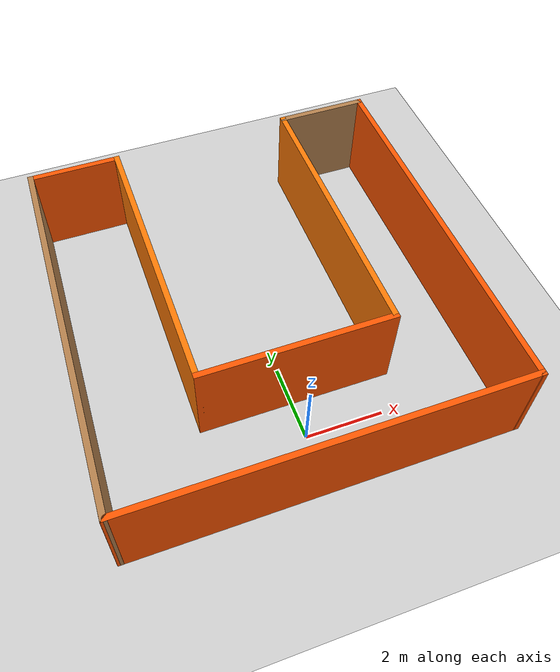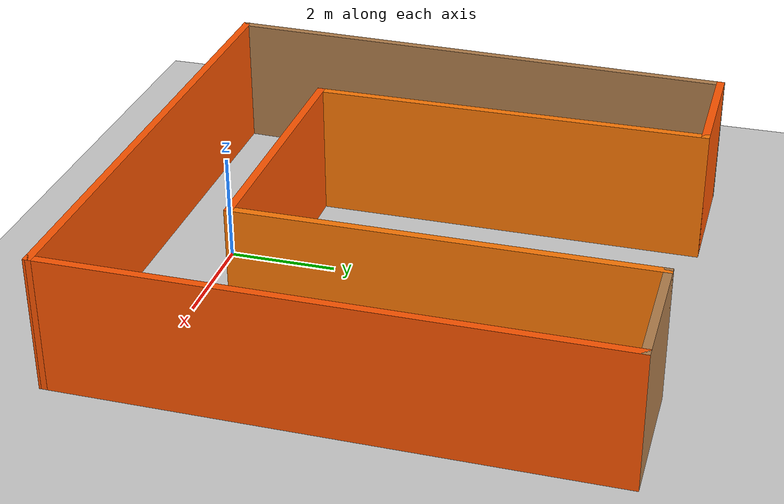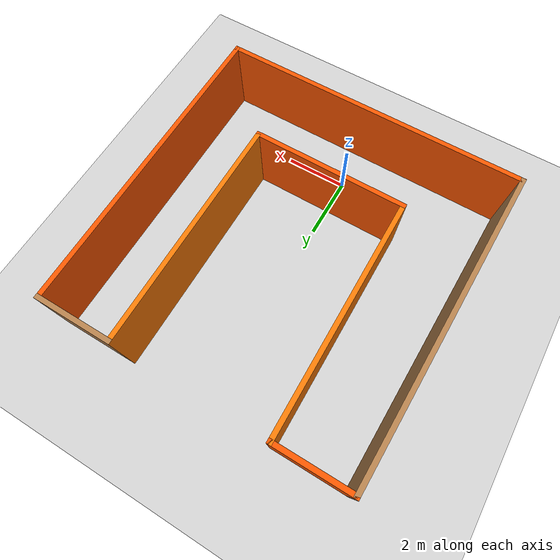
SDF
<sdf version="1.6">
 <world name="default">
  <light name="sun" type="directional">
   <pose>0 0 10 0 -0 0</pose>
   <diffuse>0.8 0.8 0.8 1</diffuse>
   <specular>0.2 0.2 0.2 1</specular>
   <attenuation>
    <range>1000</range>
    <constant>0.9</constant>
    <linear>0.01</linear>
    <quadratic>0.001</quadratic>
   </attenuation>
   <direction>-0.5 0.1 -0.9</direction>
  </light>
  <model name="ground_plane">
   <static>1</static>
   <link name="link">
    <collision name="collision">
     <geometry><plane><normal>0 0 1</normal><size>100 100</size></plane></geometry>
     <surface>
      <contact><collide_bitmask>65535</collide_bitmask></contact>
      <friction><ode><mu>100</mu><mu2>50</mu2></ode></friction>
     </surface>
    </collision>
    <visual name="visual">
     <cast_shadows>0</cast_shadows>
     <geometry><plane><normal>0 0 1</normal><size>100 100</size></plane></geometry>
     <material>
      <script><uri>file://media/materials/scripts/gazebo.material</uri><name>Gazebo/Grey</name></script>
     </material>
    </visual>
   </link>
  </model>
  <gravity>0 0 -9.8</gravity>
  <magnetic_field>6e-06 2.3e-05 -4.2e-05</magnetic_field>
  <atmosphere type="adiabatic"/>
  <physics name="default_physics" default="0" type="ode">
   <max_step_size>0.001</max_step_size>
   <real_time_factor>1</real_time_factor>
   <real_time_update_rate>1000</real_time_update_rate>
  </physics>
  <scene><ambient>0.4 0.4 0.4 1</ambient><background>0.7 0.7 0.7 1</background><shadows>1</shadows></scene>
  <spherical_coordinates>
   <surface_model>EARTH_WGS84</surface_model>
   <latitude_deg>0</latitude_deg>
   <longitude_deg>0</longitude_deg>
   <elevation>0</elevation>
   <heading_deg>0</heading_deg>
  </spherical_coordinates>
  <model name="arnab_wall">
   <pose>-0.040075 3.47376 0 0 -0 0</pose>
   <link name="Wall_10">
    <collision name="Wall_10_Collision">
     <geometry><box><size>7.5 0.15 2.5</size></box></geometry>
     <pose>0 0 1.25 0 -0 0</pose>
    </collision>
    <visual name="Wall_10_Visual">
     <pose>0 0 1.25 0 -0 0</pose>
     <geometry><box><size>7.5 0.15 2.5</size></box></geometry>
     <material>
      <script><uri>file://media/materials/scripts/gazebo.material</uri><name>Gazebo/Grey</name></script>
      <ambient>0.996078 0.47451 0.0196078 1</ambient>
     </material>
     <meta><layer>0</layer></meta>
    </visual>
    <pose>2.57611 1.24879 0 0 -0 1.5708</pose>
   </link>
   <link name="Wall_11">
    <collision name="Wall_11_Collision">
     <geometry><box><size>2.5 0.15 2.5</size></box></geometry>
     <pose>0 0 1.25 0 -0 0</pose>
    </collision>
    <visual name="Wall_11_Visual">
     <pose>0 0 1.25 0 -0 0</pose>
     <geometry><box><size>2.5 0.15 2.5</size></box></geometry>
     <material>
      <script><uri>file://media/materials/scripts/gazebo.material</uri><name>Gazebo/Wood</name></script>
      <ambient>1 1 1 1</ambient>
     </material>
     <meta><layer>0</layer></meta>
    </visual>
    <pose>3.75111 4.92379 0 0 -0 0</pose>
   </link>
   <link name="Wall_13">
    <collision name="Wall_13_Collision">
     <geometry><box><size>10 0.15 2.5</size></box></geometry>
     <pose>0 0 1.25 0 -0 0</pose>
    </collision>
    <visual name="Wall_13_Visual">
     <pose>0 0 1.25 0 -0 0</pose>
     <geometry><box><size>10 0.15 2.5</size></box></geometry>
     <material>
      <script><uri>file://media/materials/scripts/gazebo.material</uri><name>Gazebo/Grey</name></script>
      <ambient>1 0.333333 0 1</ambient>
     </material>
     <meta><layer>0</layer></meta>
    </visual>
    <pose>4.92611 -0.001213 0 0 0 -1.5708</pose>
   </link>
   <link name="Wall_14">
    <collision name="Wall_14_Collision">
     <geometry><box><size>10 0.15 2.5</size></box></geometry>
     <pose>0 0 1.25 0 -0 0</pose>
    </collision>
    <visual name="Wall_14_Visual">
     <pose>0 0 1.25 0 -0 0</pose>
     <geometry><box><size>10 0.15 2.5</size></box></geometry>
     <material>
      <script><uri>file://media/materials/scripts/gazebo.material</uri><name>Gazebo/Grey</name></script>
      <ambient>1 0.333333 0 1</ambient>
     </material>
     <meta><layer>0</layer></meta>
    </visual>
    <pose>0.001109 -4.92371 0 0 -0 3.14108</pose>
   </link>
   <link name="Wall_4">
    <collision name="Wall_4_Collision">
     <geometry><box><size>2.5 0.15 2.5</size></box></geometry>
     <pose>0 0 1.25 0 -0 0</pose>
    </collision>
    <visual name="Wall_4_Visual">
     <pose>0 0 1.25 0 -0 0</pose>
     <geometry><box><size>2.5 0.15 2.5</size></box></geometry>
     <material>
      <script><uri>file://media/materials/scripts/gazebo.material</uri><name>Gazebo/Grey</name></script>
      <ambient>1 0.333333 0 1</ambient>
     </material>
     <meta><layer>0</layer></meta>
    </visual>
    <pose>-3.44889 4.92379 0 0 -0 0</pose>
   </link>
   <link name="Wall_5">
    <collision name="Wall_5_Collision">
     <geometry><box><size>7.5 0.15 2.5</size></box></geometry>
     <pose>0 0 1.25 0 -0 0</pose>
    </collision>
    <visual name="Wall_5_Visual">
     <pose>0 0 1.25 0 -0 0</pose>
     <geometry><box><size>7.5 0.15 2.5</size></box></geometry>
     <material>
      <script><uri>file://media/materials/scripts/gazebo.material</uri><name>Gazebo/Grey</name></script>
      <ambient>0.996078 0.47451 0.0196078 1</ambient>
     </material>
     <meta><layer>0</layer></meta>
    </visual>
    <pose>-2.27389 1.24879 0 0 0 -1.5708</pose>
   </link>
   <link name="Wall_7">
    <collision name="Wall_7_Collision">
     <geometry><box><size>10 0.15 2.5</size></box></geometry>
     <pose>0 0 1.25 0 -0 0</pose>
    </collision>
    <visual name="Wall_7_Visual">
     <pose>0 0 1.25 0 -0 0</pose>
     <geometry><box><size>10 0.15 2.5</size></box></geometry>
     <material>
      <script><uri>file://media/materials/scripts/gazebo.material</uri><name>Gazebo/Wood</name></script>
      <ambient>1 1 1 1</ambient>
     </material>
     <meta><layer>0</layer></meta>
    </visual>
    <pose>-4.77389 0.001287 0 0 0 -1.60126</pose>
   </link>
   <link name="Wall_9">
    <collision name="Wall_9_Collision">
     <geometry><box><size>5 0.15 2.5</size></box></geometry>
     <pose>0 0 1.25 0 -0 0</pose>
    </collision>
    <visual name="Wall_9_Visual">
     <pose>0 0 1.25 0 -0 0</pose>
     <geometry><box><size>5 0.15 2.5</size></box></geometry>
     <material>
      <script><uri>file://media/materials/scripts/gazebo.material</uri><name>Gazebo/Grey</name></script>
      <ambient>1 0.333333 0 1</ambient>
     </material>
     <meta><layer>0</layer></meta>
    </visual>
    <pose>0.151109 -2.42621 0 0 -0 0</pose>
   </link>
   <static>1</static>
  </model>
 </world>
</sdf>
